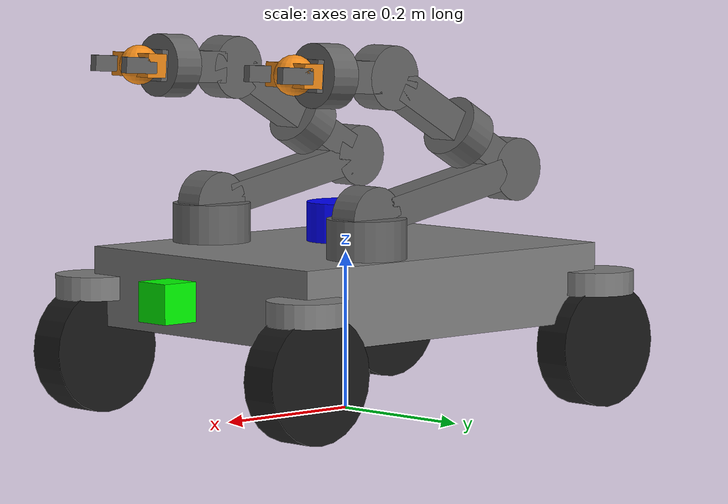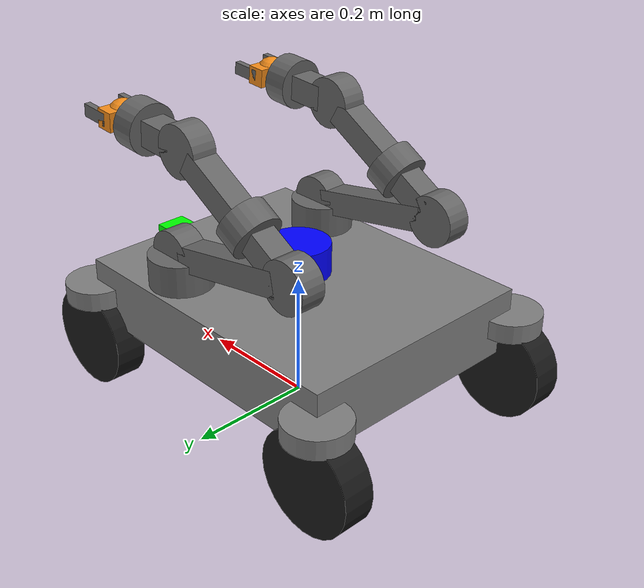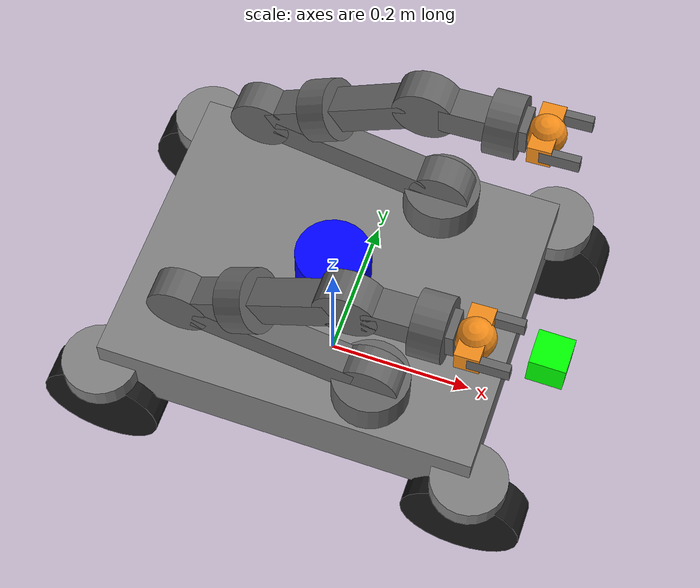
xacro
<?xml version="1.0"?>
<robot xmlns:xacro="http://www.ros.org/wiki/xacro" name="xmobot">

    <!-- Define parameters with default values -->
    <xacro:arg name="robot_length" default="0.5"/>
    <xacro:arg name="robot_width" default="0.4"/>
    <xacro:arg name="robot_height" default="0.1"/>
    <xacro:arg name="wheel_radius" default="0.08"/>
    <xacro:arg name="wheel_width" default="0.05"/>
    <xacro:arg name="wheel_separation_x" default="0.5"/>
    <xacro:arg name="wheel_separation_y" default="0.4"/>
    <xacro:arg name="drive_type" default="4wis"/>
    <xacro:arg name="use_mesh" default="false"/>
    <xacro:arg name="use_arms" default="true"/>

    <!-- 全局参数 -->
    <xacro:property name="use_mesh" value="$(arg use_mesh)"/>
    <xacro:property name="use_arms" value="$(arg use_arms)"/>
    <xacro:property name="drive_type" value="$(arg drive_type)"/>
    <xacro:property name="robot_length" value="$(arg robot_length)" />
    <xacro:property name="robot_width" value="$(arg robot_width)" />
    <xacro:property name="robot_height" value="$(arg robot_height)" />
    <xacro:property name="wheel_radius" value="$(arg wheel_radius)"/>
    <xacro:property name="wheel_width" value="$(arg wheel_width)" />
    <xacro:property name="wheel_separation_x" value="$(arg wheel_separation_x)" />
    <xacro:property name="wheel_separation_y" value="$(arg wheel_separation_y)" />

    <xacro:property name="M_PI" value="3.1415926535897931" />
    <xacro:property name="M_PI_2" value="1.570796327" />
    <xacro:property name="DEG_TO_RAD" value="0.017453293" />

    <!-- Import Xacro -->
    <xacro:include filename="$(find xmobot)/urdf/xmobot_inertial.xacro"/>

    <xacro:include filename="$(find xmobot)/urdf/xmobot_base.xacro"/>
    <xacro:if value="${use_arms}">
        <xacro:include filename="$(find xmobot)/urdf/xmobot_arm.xacro"/>
        <xacro:xmobot_arm prefix="left_"  parent_link="base_link" arm_offset_x="0.1"  arm_offset_y="0.145" arm_offset_z="0.0"/>
        <xacro:xmobot_arm prefix="right_" parent_link="base_link" arm_offset_x="0.1"  arm_offset_y="-0.145" arm_offset_z="0.0"/>
    </xacro:if>

    <xacro:include filename="$(find xmobot)/urdf/xmobot_base_gazebo.xacro"/>
    <xacro:gazebo_base_plugins drive_type="${drive_type}"/>

    <xacro:include filename="$(find xmobot)/urdf/xmobot_arm_gazebo.xacro"/>
    <xacro:if value="${use_arms}">
        <xacro:gazebo_arm_plugins prefix="left_"/>
        <xacro:gazebo_arm_plugins prefix="right_"/>
    </xacro:if>

</robot>

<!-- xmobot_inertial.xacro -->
<robot xmlns:xacro="http://www.ros.org/wiki/xacro">

    <!-- 生成cylinder惯性 -->
    <xacro:macro name="inertial_cylinder" params="mass radius length">
        <inertial>
            <origin xyz="0 0 0" rpy="0 0 0"/>
            <mass value="${mass}"/>
            <inertia
                    ixx="${(1/12.0) * mass * (3 * radius * radius + length * length)+1e-3}"
                    iyy="${(1/12.0) * mass * (3 * radius * radius + length * length)+1e-3}"
                    izz="${0.5 * mass * radius * radius+1e-3}"
                    ixy="0.0" ixz="0.0" iyz="0.0"/>
        </inertial>
    </xacro:macro>

    <!-- 生成box惯性 -->
    <xacro:macro name="inertial_box" params="mass size_x size_y size_z">
        <inertial>
            <origin xyz="0 0 0" rpy="0 0 0"/>
            <mass value="${mass}"/>
            <inertia
                    ixx="${(1/12.0) * mass * (size_y * size_y + size_z * size_z)+1e-3}"
                    iyy="${(1/12.0) * mass * (size_x * size_x + size_z * size_z)+1e-3}"
                    izz="${(1/12.0) * mass * (size_x * size_x + size_y * size_y)+1e-3}"
                    ixy="0.0" ixz="0.0" iyz="0.0"/>
        </inertial>
    </xacro:macro>

</robot>

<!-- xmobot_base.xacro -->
<robot xmlns:xacro="http://ros.org/wiki/xacro">

    <!-- 引用模块 -->
    <xacro:include filename="$(find xmobot)/urdf/xmobot_drive.xacro"/>
    <xacro:include filename="$(find xmobot)/urdf/xmobot_sensors.xacro"/>

    <!-- Basement -->
    <link name="base_footprint"/>

    <joint name="base_joint" type="fixed">
        <parent link="base_footprint"/>
        <child link="base_link"/>
        <origin xyz="0 0 ${wheel_radius*2}" rpy="0 0 0"/>
    </joint>

    <link name="base_link">
        <visual>
            <origin xyz="0 0 0" rpy="0 0 0"/>
            <xacro:if value="${use_mesh}">
                <geometry>
                    <mesh filename="package://xmobot/meshes/base.dae" scale="1 1 1"/>
                </geometry>
            </xacro:if>
            <xacro:unless value="${use_mesh}">
                <geometry>
                    <box size="${robot_length} ${robot_width} ${robot_height}"/>
                </geometry>
            </xacro:unless>
            <material name="Grey">
                <color rgba="0.5 0.5 0.5 1.0"/>
            </material>
        </visual>

        <collision>
            <geometry>
                <box size="${robot_length} ${robot_width} ${robot_height}"/>
            </geometry>
        </collision>

        <xacro:inertial_box mass="2" size_x="${robot_length}" size_y="${robot_width}" size_z="${robot_height}"/>
    </link>

    <!-- 底盘结构 -->
    <xacro:drive_system/>

    <!-- 传感器挂载 -->
    <xacro:sensors/>

</robot>

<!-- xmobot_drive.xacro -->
<robot xmlns:xacro="http://ros.org/wiki/xacro">

    <xacro:macro name="drive_system">

        <!-- 定义四个轮子的生成方式 -->
        <xacro:macro name="wheel_unit" params="prefix x y enable_steer">

            <!-- 如果需要加转向 -->
            <xacro:if value="${enable_steer}">
                <link name="${prefix}_steering_link">
                    <visual>
                        <origin xyz="0 0 0" rpy="0 0 0"/>
                        <xacro:if value="${use_mesh}">
                            <geometry>
                                <mesh filename="package://xmobot/meshes/steering_link.dae" scale="1 1 1"/>
                            </geometry>
                        </xacro:if>
                        <xacro:unless value="${use_mesh}">
                            <geometry>
                                <cylinder radius="0.05" length="0.03"/>
                            </geometry>
                        </xacro:unless>
                        <material name="Gray">
                            <color rgba="0.5 0.5 0.5 1.0"/>
                        </material>
                    </visual>
                    <collision>
                        <origin xyz="0 0 0" rpy="0 0 0"/>
                        <geometry>
                            <cylinder radius="0.05" length="0.03"/>
                        </geometry>
                    </collision>

                    <xacro:inertial_cylinder mass="0.5" radius="0.05" length="0.03"/>
                </link>
                <joint name="${prefix}_steering_joint" type="revolute">
                    <parent link="base_link"/>
                    <child link="${prefix}_steering_link"/>
                    <origin xyz="${x} ${y} 0" rpy="0 0 0"/>
                    <axis xyz="0 0 1"/>
                    <limit lower="${-90*DEG_TO_RAD}" upper="${90*DEG_TO_RAD}" effort="1.0" velocity="1.0"/>
                </joint>
            </xacro:if>

            <!-- 轮子link -->
            <link name="${prefix}_wheel_link">
                <visual>
                    <origin xyz="0 0 0" rpy="${M_PI_2} 0 0"/>
                    <xacro:if value="${use_mesh}">
                        <geometry>
                            <mesh filename="package://xmobot/meshes/wheel.dae" scale="1 1 1"/>
                        </geometry>
                    </xacro:if>
                    <xacro:unless value="${use_mesh}">
                        <geometry>
                            <cylinder radius="${wheel_radius}" length="${wheel_width}"/>
                        </geometry>
                    </xacro:unless>
                    <material name="Black">
                        <color rgba="0.1 0.1 0.1 1.0"/>
                    </material>
                </visual>

                <collision>
                    <origin xyz="0 0 0" rpy="${M_PI_2} 0 0"/>
                    <geometry>
                        <cylinder radius="${wheel_radius}" length="${wheel_width}"/>
                    </geometry>
                </collision>

                <xacro:inertial_cylinder mass="1" radius="${wheel_radius}" length="${wheel_width}"/>
            </link>

            <!-- wheel joint -->
            <xacro:if value="${enable_steer}">
                <joint name="${prefix}_wheel_joint" type="continuous">
                    <parent link="${prefix}_steering_link"/>
                    <child link="${prefix}_wheel_link"/>
                    <origin xyz="0 0 ${-wheel_radius}" rpy="0 0 0"/>
                    <axis xyz="0 1 0"/>
                    <limit effort="30.0" velocity="10.0"/>
                </joint>
            </xacro:if>

            <xacro:unless value="${enable_steer}">
                <joint name="${prefix}_wheel_joint" type="continuous">
                    <parent link="base_link"/>
                    <child link="${prefix}_wheel_link"/>
                    <origin xyz="${x} ${y} ${-wheel_radius}" rpy="0 0 0"/>
                    <axis xyz="0 1 0"/>
                    <limit effort="30.0" velocity="10.0"/>
                </joint>
            </xacro:unless>

        </xacro:macro>

        <!-- 根据drive_type生成四个轮子 -->

        <xacro:if value="${drive_type == 'diff_drive' or drive_type == 'mecanum'}">
            <!-- 差速 / 麦克纳姆模式，四轮固定，不转向 -->
            <xacro:wheel_unit prefix="front_left"  x="${wheel_separation_x/2}"  y="${wheel_separation_y/2}"  enable_steer="false"/>
            <xacro:wheel_unit prefix="front_right" x="${wheel_separation_x/2}"  y="${-wheel_separation_y/2}" enable_steer="false"/>
            <xacro:wheel_unit prefix="rear_left"   x="${-wheel_separation_x/2}" y="${wheel_separation_y/2}"  enable_steer="false"/>
            <xacro:wheel_unit prefix="rear_right"  x="${-wheel_separation_x/2}" y="${-wheel_separation_y/2}" enable_steer="false"/>
        </xacro:if>

        <xacro:if value="${drive_type == 'ackermann_front'}">
            <!-- 前轮转向阿克曼模式 -->
            <xacro:wheel_unit prefix="front_left"  x="${wheel_separation_x/2}"  y="${wheel_separation_y/2}"  enable_steer="true"/>
            <xacro:wheel_unit prefix="front_right" x="${wheel_separation_x/2}"  y="${-wheel_separation_y/2}" enable_steer="true"/>
            <xacro:wheel_unit prefix="rear_left"   x="${-wheel_separation_x/2}" y="${wheel_separation_y/2}"  enable_steer="false"/>
            <xacro:wheel_unit prefix="rear_right"  x="${-wheel_separation_x/2}" y="${-wheel_separation_y/2}" enable_steer="false"/>
        </xacro:if>

        <xacro:if value="${drive_type == 'ackermann_rear'}">
            <!-- 后轮转向阿克曼模式 -->
            <xacro:wheel_unit prefix="front_left"  x="${wheel_separation_x/2}"  y="${wheel_separation_y/2}"  enable_steer="false"/>
            <xacro:wheel_unit prefix="front_right" x="${wheel_separation_x/2}"  y="${-wheel_separation_y/2}" enable_steer="false"/>
            <xacro:wheel_unit prefix="rear_left"   x="${-wheel_separation_x/2}" y="${wheel_separation_y/2}"  enable_steer="true"/>
            <xacro:wheel_unit prefix="rear_right"  x="${-wheel_separation_x/2}" y="${-wheel_separation_y/2}" enable_steer="true"/>
        </xacro:if>

        <xacro:if value="${drive_type == '4wis'}">
            <!-- 四轮独立转向 -->
            <xacro:wheel_unit prefix="front_left"  x="${wheel_separation_x/2}"  y="${wheel_separation_y/2}"  enable_steer="true"/>
            <xacro:wheel_unit prefix="front_right" x="${wheel_separation_x/2}"  y="${-wheel_separation_y/2}" enable_steer="true"/>
            <xacro:wheel_unit prefix="rear_left"   x="${-wheel_separation_x/2}" y="${wheel_separation_y/2}"  enable_steer="true"/>
            <xacro:wheel_unit prefix="rear_right"  x="${-wheel_separation_x/2}" y="${-wheel_separation_y/2}" enable_steer="true"/>
        </xacro:if>

    </xacro:macro>

</robot>

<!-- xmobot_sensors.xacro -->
<robot xmlns:xacro="http://ros.org/wiki/xacro">
    <xacro:property name="lidar_height" value="0.08"/>
    <xacro:property name="camera_height" value="0.0"/>
    <xacro:property name="camera_offset_x" value="0.3"/>

    <xacro:macro name="sensors">
        <!-- Lidar -->
        <link name="lidar_link">
            <visual>
                <origin xyz="0 0 0" rpy="0 0 0"/>
                <xacro:if value="${use_mesh}">
                    <geometry>
                        <mesh filename="package://xmobot/meshes/lidar.dae" scale="1 1 1"/>
                    </geometry>
                </xacro:if>

                <xacro:unless value="${use_mesh}">
                    <geometry>
                        <cylinder length="0.05" radius="0.05"/>
                    </geometry>
                </xacro:unless>

                <material name="Blue">
                    <color rgba="0 0 1 1"/>
                </material>
            </visual>
        </link>

        <joint name="lidar_joint" type="fixed">
            <parent link="base_link"/>
            <child link="lidar_link"/>
            <origin xyz="0 0 ${lidar_height}" rpy="0 0 0"/>
        </joint>

        <!-- Camera -->
        <link name="camera_link">
            <visual>
                <origin xyz="0 0 0" rpy="0 0 0"/>
                <xacro:if value="${use_mesh}">
                    <geometry>
                        <mesh filename="package://xmobot/meshes/camera.dae" scale="1 1 1"/>
                    </geometry>
                </xacro:if>

                <xacro:unless value="${use_mesh}">
                    <geometry>
                        <box size="0.05 0.05 0.05"/>
                    </geometry>
                </xacro:unless>

                <material name="Green">
                    <color rgba="0 1 0 1"/>
                </material>
            </visual>
        </link>

        <joint name="camera_joint" type="fixed">
            <parent link="base_link"/>
            <child link="camera_link"/>
            <origin xyz="${camera_offset_x} 0 ${camera_height}" rpy="0 0 0"/>
        </joint>

        <!-- IMU -->
        <link name="imu_link">
            <visual>
                <origin xyz="0 0 0" rpy="0 0 0"/>
                <geometry>
                    <box size="0.05 0.05 0.02"/>
                </geometry>
                <material name="Yellow">
                    <color rgba="1.0 1.0 0.0 1.0"/>
                </material>
            </visual>
        </link>

        <joint name="imu_joint" type="fixed">
            <parent link="base_link"/>
            <child link="imu_link"/>
            <origin xyz="0 0 0" rpy="0 0 0"/>
        </joint>

    </xacro:macro>

</robot>

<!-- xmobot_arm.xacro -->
<robot xmlns:xacro="http://ros.org/wiki/xacro">
    <xacro:macro name="xmobot_arm" params="prefix parent_link arm_offset_x arm_offset_y arm_offset_z">
        <!-- Link Length Parameters -->
        <xacro:property name="l1" value="0.1"/>
        <xacro:property name="l2" value="0.25"/>
        <xacro:property name="l3" value="0.1"/>
        <xacro:property name="l4" value="0.15"/>
        <xacro:property name="l5" value="0.1"/>
        <xacro:property name="l6" value="0.05"/>
        <xacro:property name="joint_radius" value="0.04"/>
        <!-- Gripper parameters -->
        <xacro:property name="finger_length"     value="0.05"/>
        <xacro:property name="finger_thickness"  value="0.01"/>
        <xacro:property name="finger_width"      value="0.02"/>
        <xacro:property name="finger_gap"        value="0.06"/>
        <xacro:property name="finger_max_disp"   value="0.03"/>

        <!-- Macro for combined rod + two circular ends -->
        <xacro:macro name="arm_link" params="link_name length radius mass rpy">
            <link name="${link_name}">
                <xacro:inertial_box mass="${mass}" size_x="${length}" size_y="${radius}" size_z="${radius}"/>
                <!-- Rod -->
                <visual>
                    <origin xyz="${length/2} 0 0" rpy="0 0 0"/>
                    <geometry>
                        <box size="${length-radius} ${radius} ${radius}"/>
                    </geometry>
                    <material name="dark_gray"><color rgba="0.4 0.4 0.4 1.0"/></material>
                </visual>
                <visual>
                    <origin xyz="0 0 0" rpy="${rpy}"/>
                    <geometry>
                        <cylinder length="${radius}" radius="${radius}"/>
                    </geometry>
                    <material name="dark_gray"><color rgba="0.4 0.4 0.4 1.0"/></material>
                </visual>
                <collision>
                    <origin xyz="${length/2} 0 0" rpy="0 0 0"/>
                    <geometry>
                        <box size="${length-radius} ${radius} ${radius}"/>
                    </geometry>
                </collision>
                <collision>
                    <origin xyz="0 0 0" rpy="${rpy}"/>
                    <geometry>
                        <cylinder length="${radius}" radius="${radius}"/>
                    </geometry>
                </collision>
            </link>
        </xacro:macro>

        <!-- Macro for two-finger gripper -->
        <xacro:macro name="gripper_finger" params="name mass length thickness width">
            <link name="${name}">
                <!-- 惯性 -->
                <xacro:inertial_box mass="${mass}" size_x="${length}" size_y="${thickness}" size_z="${width}"/>
                <visual>
                    <origin xyz="${length/2} 0 0" rpy="0 0 0"/>
                    <geometry>
                        <box size="${length} ${thickness} ${width}"/>
                    </geometry>
                    <material name="dark_gray"><color rgba="0.4 0.4 0.4 1.0"/></material>
                </visual>
                <collision>
                    <origin xyz="${length/2} 0 0" rpy="0 0 0"/>
                    <geometry>
                        <box size="${length} ${thickness} ${width}"/>
                    </geometry>
                </collision>
            </link>
        </xacro:macro>

        <!-- Macro for full 6DOF arm: elbow-type + spherical wrist -->

        <!-- Joint 1: Base rotation (yaw) -->
        <link name="${prefix}link_1">
            <!-- 惯性 -->
            <xacro:inertial_cylinder mass="0.5" radius="0.05" length="${l1}"/>
            <visual>
                <origin xyz="0 0 ${l1/2}" rpy="0 0 0"/>
                <geometry><cylinder length="${l1}" radius="0.05"/></geometry>
                <material name="dark_gray"><color rgba="0.4 0.4 0.4 1.0"/></material>
            </visual>
            <collision>
                <origin xyz="0 0 ${l1/2}" rpy="0 0 0"/>
                <geometry><cylinder length="${l1}" radius="0.05"/></geometry>
            </collision>
        </link>
        <joint name="${prefix}joint_1" type="revolute">
            <origin xyz="${arm_offset_x} ${arm_offset_y} ${arm_offset_z}" rpy="0 0 0"/>
            <parent link="${parent_link}"/>
            <child link="${prefix}link_1"/>
            <axis xyz="0 0 1"/>
            <limit lower="${-M_PI}" upper="${M_PI}" effort="30" velocity="1.0"/>
        </joint>

        <!-- Joint 2: Shoulder pitch -->
        <xacro:arm_link link_name="${prefix}link_2" length="${l2}" radius="${joint_radius}" mass="1.0" rpy="${M_PI_2} 0 0"/>
        <joint name="${prefix}joint_2" type="revolute">
            <origin xyz="0 0 ${l1}" rpy="0 -2.95 0"/>
            <parent link="${prefix}link_1"/>
            <child link="${prefix}link_2"/>
            <axis xyz="0 1 0"/>
            <limit lower="0" upper="2.7" effort="30" velocity="1.0"/>
        </joint>

        <!-- Joint 3: Elbow pitch -->
        <xacro:arm_link link_name="${prefix}link_3" length="${l3}" radius="${joint_radius}" mass="0.8" rpy="${M_PI_2} 0 0"/>
        <joint name="${prefix}joint_3" type="revolute">
            <origin xyz="${l2} 0 0" rpy="0 2.425 0"/>
            <parent link="${prefix}link_2"/>
            <child link="${prefix}link_3"/>
            <axis xyz="0 1 0"/>
            <limit lower="${-M_PI}" upper="0" effort="30" velocity="1.0"/>
        </joint>

        <!-- Joint 4: Wrist roll -->
        <xacro:arm_link link_name="${prefix}link_4" length="${l4}" radius="${joint_radius}" mass="0.6" rpy="0 ${M_PI_2} 0"/>
        <joint name="${prefix}joint_4" type="revolute">
            <origin xyz="${l3} 0 0" rpy="0 0 0"/>
            <parent link="${prefix}link_3"/>
            <child link="${prefix}link_4"/>
            <axis xyz="1 0 0"/>
            <limit lower="${-M_PI}" upper="${M_PI}" effort="30" velocity="1.0"/>
        </joint>

        <!-- Joint 5: Wrist pitch -->
        <xacro:arm_link link_name="${prefix}link_5" length="${l5}" radius="${joint_radius}" mass="0.5" rpy="${M_PI_2} 0 0"/>
        <joint name="${prefix}joint_5" type="revolute">
            <origin xyz="${l4} 0 0" rpy="0 0.465 0"/>
            <parent link="${prefix}link_4"/>
            <child link="${prefix}link_5"/>
            <axis xyz="0 1 0"/>
            <limit lower="-2.78" upper="1.9" effort="15" velocity="1.0"/>
        </joint>

        <!-- Joint 6: Wrist roll （if want to change to Wrist yaw, set link rpy= "0 0 0 "）-->
        <xacro:arm_link link_name="${prefix}link_6" length="${l6}" radius="${joint_radius}" mass="0.4" rpy="0 ${M_PI_2} 0"/>
        <joint name="${prefix}joint_6" type="revolute">
            <origin xyz="${l5} 0 0" rpy="0 0 0"/>
            <parent link="${prefix}link_5"/>
            <child link="${prefix}link_6"/>
            <axis xyz="1 0 0"/>
            <limit lower="-3.14" upper="3.14" effort="15" velocity="1.0"/>
        </joint>

        <!-- Flange -->
        <link name="${prefix}flange">
            <xacro:inertial_box mass="0.2" size_x="0.03" size_y="0.07" size_z="0.03"/>
            <visual>
                <origin xyz="0 0 0" rpy="0 0 0"/>
                <geometry><sphere radius="0.025"/></geometry>
            </visual>
            <visual>
                <origin xyz="0 0 0" rpy="0 0 0"/>
                <geometry>
                    <box size="0.03 0.07 0.03"/>
                </geometry>
            </visual>
        </link>
        <joint name="${prefix}joint_7" type="fixed">
            <origin xyz="${l6} 0 0 " rpy="0 0 0"/>
            <parent link="${prefix}link_6"/>
            <child link="${prefix}flange"/>
        </joint>

        <!-- Attach gripper -->
        <xacro:gripper_finger name="${prefix}finger_left" length="${finger_length}" thickness="${finger_thickness}" width="${finger_width}" mass="0.1"/>
        <joint name="${prefix}finger_left_joint" type="prismatic">
            <parent link="${prefix}flange"/>
            <child  link="${prefix}finger_left"/>
            <origin xyz="0 ${finger_gap/2} 0" rpy="0 0 0"/>
            <axis  xyz="0 1 0"/>
            <limit lower="-${finger_max_disp}" upper="0" effort="5" velocity="0.1"/>
        </joint>

        <xacro:gripper_finger name="${prefix}finger_right" length="${finger_length}" thickness="${finger_thickness}" width="${finger_width}" mass="0.1"/>
        <joint name="${prefix}finger_right_joint" type="prismatic">
            <parent link="${prefix}flange"/>
            <child  link="${prefix}finger_right"/>
            <origin xyz="0 ${-finger_gap/2} 0" rpy="0 0 0"/>
            <axis  xyz="0 1 0"/>
            <limit lower="0" upper="${finger_max_disp}" effort="5" velocity="0.1"/>
        </joint>
    </xacro:macro>
</robot>
